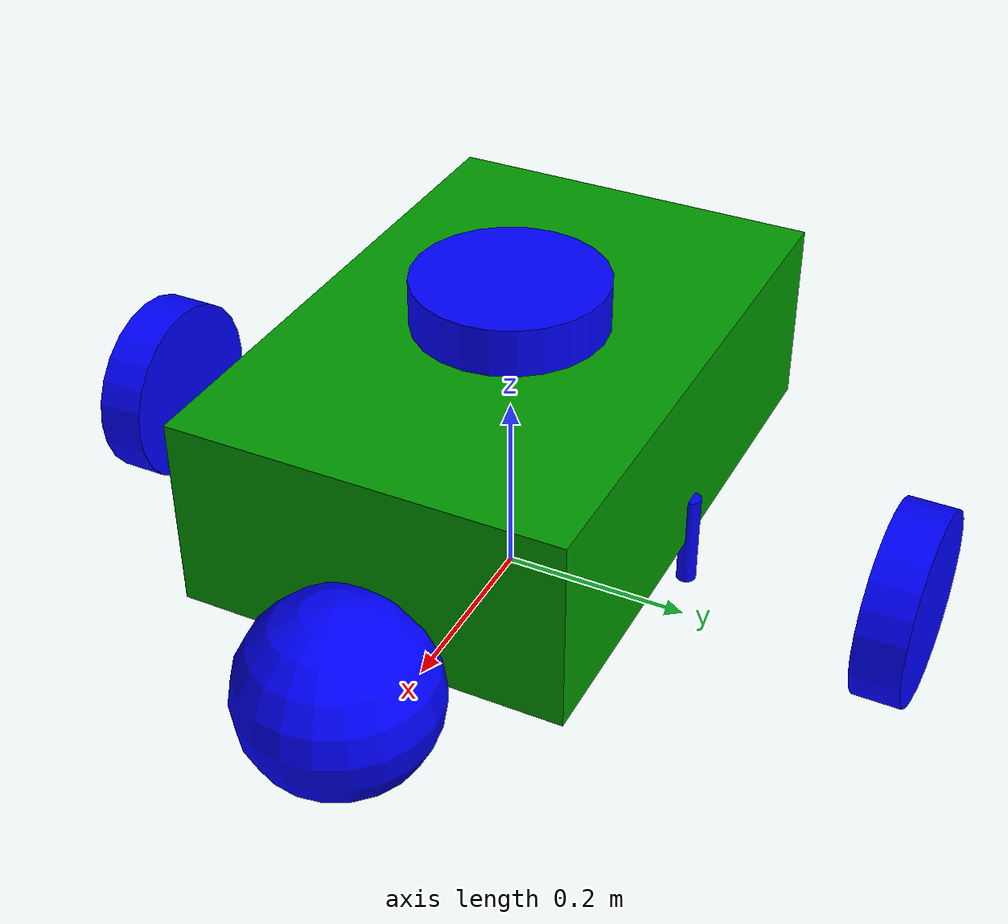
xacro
<?xml version="1.0"?>
<robot name="ackermann_rover" xmlns:xacro="http://www.ros.org/wiki/xacro">

    <material name="grey">
        <color rgba="0.7 0.7 0.7 1" />
    </material>

    <material name="green">
        <color rgba="0 0.6 0 1" />
    </material>

    <material name="blue">
        <color rgba="0 0 1 1" />
    </material>

    <link name="base_link">
        <visual>
            <geometry>
                <box size="0.6 0.4 0.2" />
            </geometry>
            <origin xyz="0 0 0.1" rpy="0 0 0" />
            <material name="green" />
        </visual>
    </link>

    <link name="lidar">
        <visual>
            <geometry>
                <cylinder radius="0.1" length="0.05" />
            </geometry>
            <origin xyz="0 0 0.025" rpy="0 0 0" />
            <material name="blue" />
        </visual>
    </link>

    <link name="right_wheel">
        <visual>
            <geometry>
                <cylinder radius="0.1" length="0.05" />
            </geometry>
            <origin xyz="0 0 0.025" rpy="0 0 0" />
            <material name="blue" />
        </visual>
    </link>

    <link name="left_wheel">
        <visual>
            <geometry>
                <cylinder radius="0.1" length="0.05" />
            </geometry>
            <origin xyz="0 0 -0.025" rpy="0 0 0" />
            <material name="blue" />
        </visual>
    </link>

    <link name="right_steering_column">
        <visual>
            <geometry>
                <cylinder radius="0.01" length="0.1" />
            </geometry>
            <origin xyz="0 0 0" rpy="0 0 0" />
            <material name="blue" />
        </visual>
    </link>

    <link name="left_steering_column">
        <visual>
            <geometry>
                <cylinder radius="0.01" length="0.1" />
            </geometry>
            <origin xyz="0 0 0" rpy="0 0 0" />
            <material name="blue" />
        </visual>
    </link>

    <link name="castor">
        <visual>
            <geometry>
                <sphere radius="0.1"/>
            </geometry>
            <origin xyz="0.2 0 0" rpy="0 0 0" />
            <material name="blue" />
        </visual>
    </link>

    <link name="base_footprint" />

    <joint name="base_lidar_joint" type="fixed">
        <parent link="base_link" />
        <child link="lidar" />
        <origin xyz="0 0 0.2" rpy="0 0 0" />
    </joint>

    <joint name="base_left_wheel" type="continuous">
        <parent link="base_link" />
        <child link="left_steering_column" />
        <origin xyz="0 0.2 0" rpy="0 0 0" />
        <axis xyz="1 0 0" />
    </joint>

    <joint name="left_wheel_steering_column" type="revolute">
        <parent link="left_steering_column" />
        <child link="left_wheel" />
        <origin xyz="0 0.2 0" rpy="1.57 0 0" />
        <axis xyz="1 0 0" />
        <limit lower="0.0" upper="0.548" effort="1000" velocity="0.5"/>
    </joint>

    <joint name="base_right_wheel" type="continuous">
        <parent link="base_link" />
        <child link="right_steering_column" />
        <origin xyz="0 -0.2 0" rpy="0 0 0" />
        <axis xyz="1 0 0" />
    </joint>

    <joint name="right_wheel_steering_column" type="revolute">
        <parent link="right_steering_column" />
        <child link="right_wheel" />
        <origin xyz="0 -0.2 0" rpy="1.57 0 0" />
        <axis xyz="1 0 0" />
        <limit lower="0.0" upper="0.548" effort="1000" velocity="0.5"/>
    </joint>

    <joint name="base_link_castor" type="fixed">
        <parent link="base_link" />
        <child link="castor" />
        <origin xyz="0.15 0 0" rpy="0 0 0" />
    </joint>

    <joint name="base_footprint_base_link" type="fixed">
        <parent link="base_footprint" />
        <child link="base_link" />
        <origin xyz="0 0 0.1" rpy="0 0 0" />
    </joint>

</robot>
